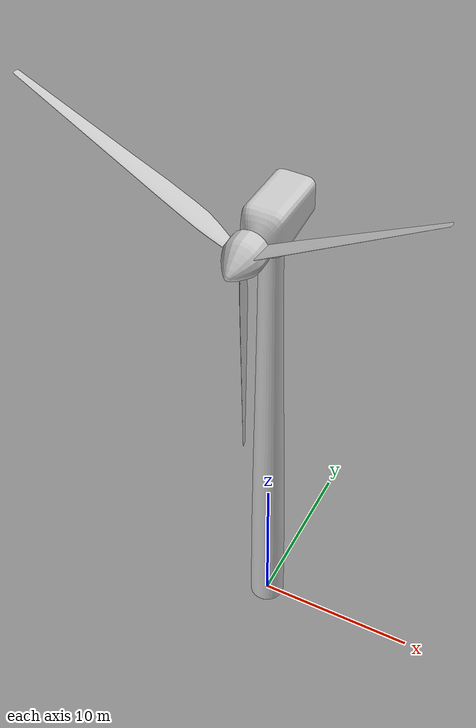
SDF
<?xml version='1.0'?>
<sdf version='1.9'>
  <model name='wind_turbine'>
  <static>true</static>
    <link name='tower_link'>
      <collision name="tower_collision">
        <geometry>
          <mesh>
            <uri>model://wind_turbine/meshes/tower.stl</uri>
            <scale> 0.072 0.072 0.125 </scale>
          </mesh>
        </geometry>
      </collision>
      <visual name="tower_visual">
        <geometry>
          <mesh>
            <uri>model://wind_turbine/meshes/tower.stl</uri>
            <scale> 0.072 0.072 0.125 </scale>
          </mesh>
        </geometry>
        <material>
          <ambient>0.8 0.8 0.8 1</ambient>
          <diffuse>0.8 0.8 0.8 1</diffuse>
          <specular>0.1 0.1 0.1 1.0</specular>
           <pbr>
            <metal>
              <roughness>0.6</roughness>
              <metalness>0.6</metalness>
            </metal>
          </pbr>
        </material>
      </visual>
    </link>

    <link name="generator_link">
      <pose relative_to="tower_link">0 0 31.5 0 0 1.57</pose>
      <visual name="generator_visual">
        <geometry>
          <mesh>
            <uri>model://wind_turbine/meshes/generator.stl</uri>
            <scale> 0.072 0.072 0.072 </scale>
          </mesh>
        </geometry>
        <material>
          <ambient>0.8 0.8 0.8 1</ambient>
          <diffuse>0.8 0.8 0.8 1</diffuse>
          <specular>0.1 0.1 0.1 1.0</specular>
           <pbr>
            <metal>
              <roughness>0.6</roughness>
              <metalness>0.6</metalness>
            </metal>
          </pbr>
        </material>
      </visual>
    </link>

    <link name="hub_link">
      <pose relative_to="generator_link">-3.3984 0 0 0 0 0</pose>
      <visual name="hub_visual">
      <geometry>
          <mesh>
            <uri>model://wind_turbine/meshes/hub.stl</uri>
            <scale> 0.072 0.072 0.072 </scale>
          </mesh>
        </geometry>
        <material>
          <ambient>0.8 0.8 0.8 1</ambient>
          <diffuse>0.8 0.8 0.8 1</diffuse>
          <specular>0.1 0.1 0.1 1.0</specular>
           <pbr>
            <metal>
              <roughness>0.6</roughness>
              <metalness>0.6</metalness>
            </metal>
          </pbr>
        </material>
      </visual>
    </link>

    <link name='blade1_link'>
    <pose relative_to="hub_link">0 0 -1.08 0 0 .15</pose>
      <collision name="blade1_collision">
        <geometry>
          <mesh>
            <uri>model://wind_turbine/meshes/blade.stl</uri>
            <scale> 0.05 0.01 0.072 </scale>
          </mesh>
        </geometry>
        <surface>
                <friction>
                    <ode>
                        <mu>
                            10000.0
                        </mu>
                        <mu2>
                            10000.0
                        </mu2>
                    </ode>
                </friction>
                <contact>
                    <ode>
                    <max_vel>0</max_vel>
                    <min_depth>0.001</min_depth>
                    </ode>
                </contact>
                </surface>
      </collision>
      <visual name="blade1_visual">
        <geometry>
          <mesh>
            <uri>model://wind_turbine/meshes/blade.stl</uri>
            <scale> 0.05 0.01 0.072 </scale>
          </mesh>
        </geometry>
        <material>
          <ambient>0.8 0.8 0.8 1</ambient>
          <diffuse>0.8 0.8 0.8 1</diffuse>
          <specular>0.1 0.1 0.1 1.0</specular>
           <pbr>
            <metal>
              <roughness>0.6</roughness>
              <metalness>0.6</metalness>
            </metal>
          </pbr>
        </material>
      </visual>
    </link>

    <link name='blade2_link'>
    <pose relative_to="hub_link">0 0.9353088 0.54 2.0944 0 0</pose>
      <collision name="blade2_collision">
        <geometry>
          <mesh>
            <uri>model://wind_turbine/meshes/blade.stl</uri>
            <scale> 0.05 0.01 0.072 </scale>
          </mesh>
        </geometry>
        <surface>
                <friction>
                    <ode>
                        <mu>
                            10000.0
                        </mu>
                        <mu2>
                            10000.0
                        </mu2>
                    </ode>
                </friction>
                <contact>
                    <ode>
                    <max_vel>0</max_vel>
                    <min_depth>0.001</min_depth>
                    </ode>
                </contact>
                </surface>
      </collision>
      <visual name="blade2_visual">
        <geometry>
          <mesh>
            <uri>model://wind_turbine/meshes/blade.stl</uri>
            <scale> 0.05 0.01 0.072 </scale>
          </mesh>
        </geometry>
        <material>
          <ambient>0.8 0.8 0.8 1</ambient>
          <diffuse>0.8 0.8 0.8 1</diffuse>
          <specular>0.1 0.1 0.1 1.0</specular>
           <pbr>
            <metal>
              <roughness>0.6</roughness>
              <metalness>0.6</metalness>
            </metal>
          </pbr>
        </material>
      </visual>
    </link>

    <link name='blade3_link'>
    <pose relative_to="hub_link">0 0.9353088 -0.54 -2.0944 0 0</pose>
      <collision name="blade3_collision">
        <geometry>
          <mesh>
            <uri>model://wind_turbine/meshes/blade.stl</uri>
            <scale> 0.05 0.01 0.072 </scale>
          </mesh>
        </geometry>
        <surface>
                <friction>
                    <ode>
                        <mu>
                            10000.0
                        </mu>
                        <mu2>
                            10000.0
                        </mu2>
                    </ode>
                </friction>
                <contact>
                    <ode>
                    <max_vel>0</max_vel>
                    <min_depth>0.001</min_depth>
                    </ode>
                </contact>
                </surface>
      </collision>
      <visual name="blade3_visual">
        <geometry>
          <mesh>
            <uri>model://wind_turbine/meshes/blade.stl</uri>
            <scale> 0.05 0.01 0.072 </scale>
          </mesh>
        </geometry>
       <material>
          <ambient>0.8 0.8 0.8 1</ambient>
          <diffuse>0.8 0.8 0.8 1</diffuse>
          <specular>0.1 0.1 0.1 1.0</specular>
           <pbr>
            <metal>
              <roughness>0.6</roughness>
              <metalness>0.6</metalness>
            </metal>
          </pbr>
        </material>
      </visual>
    </link>

  </model>
</sdf>
